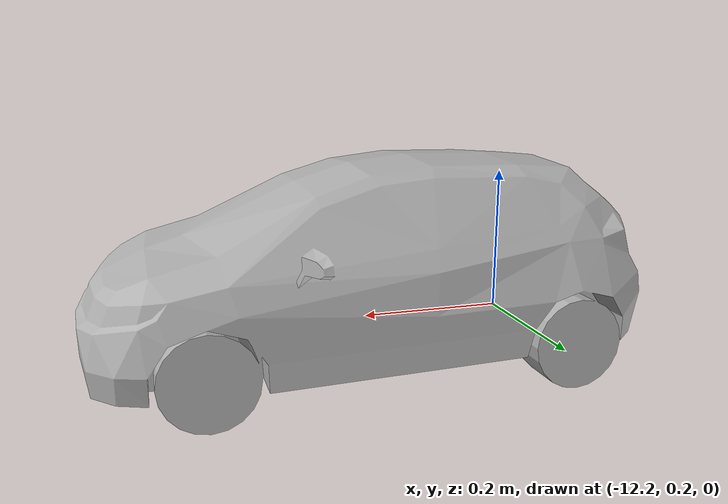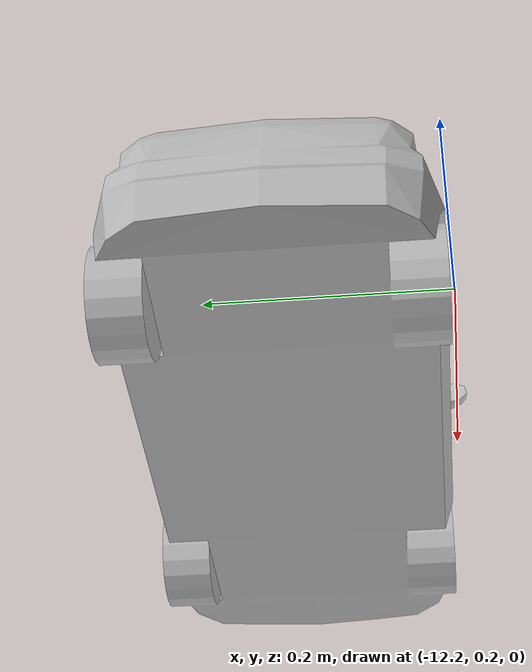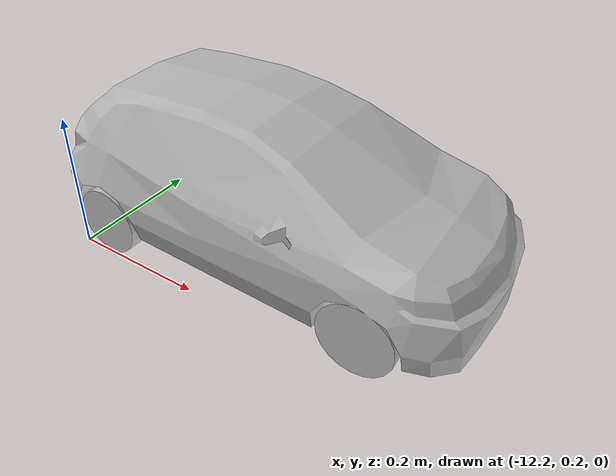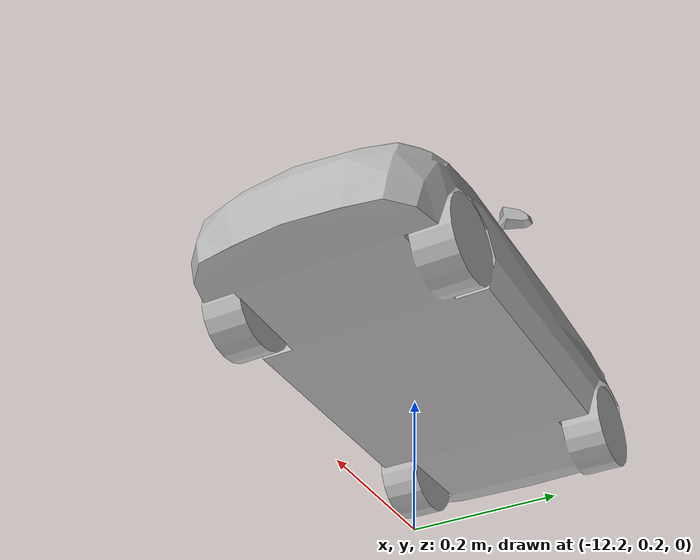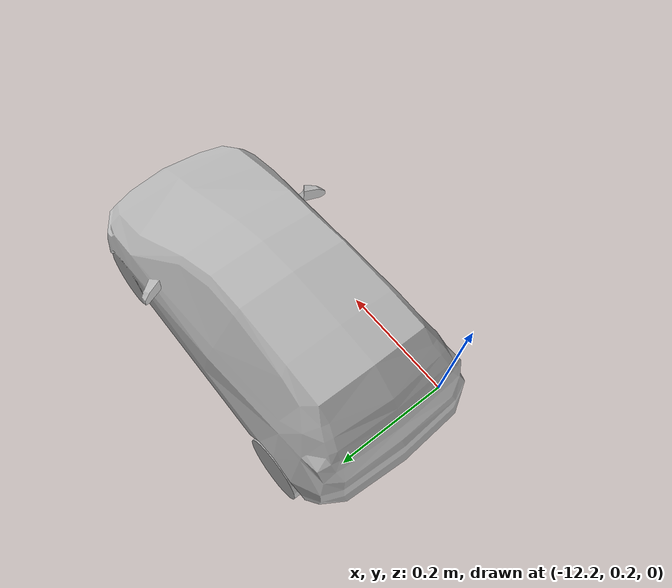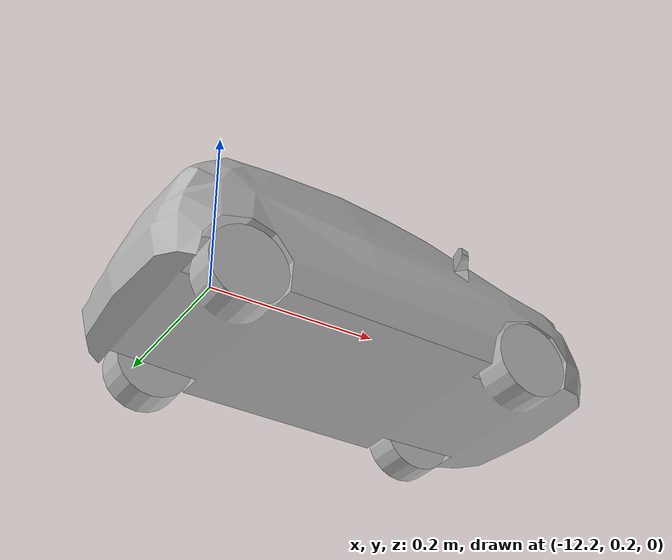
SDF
<?xml version="1.0" ?>
<sdf version="1.6">
  <model name="car">
    <static>true</static>
    <link name="link">
      <collision name="collision">
        <pose>-12.0 0.35 0 0 0 1.57079632679</pose>
        <geometry>
          <mesh>
            <scale>0.004 0.004 0.004</scale>
            <uri>meshes/hatchback_grey.obj</uri>
          </mesh>
        </geometry>
      </collision>
      <visual name="visual">
        <pose>-12.0 0.35 0 0 0 1.57079632679</pose>
        <geometry>
          <mesh>
            <scale>0.004 0.004 0.004</scale>
            <uri>meshes/hatchback_grey.obj</uri>
          </mesh>
        </geometry>
      </visual>
    </link>
  </model>
</sdf>
